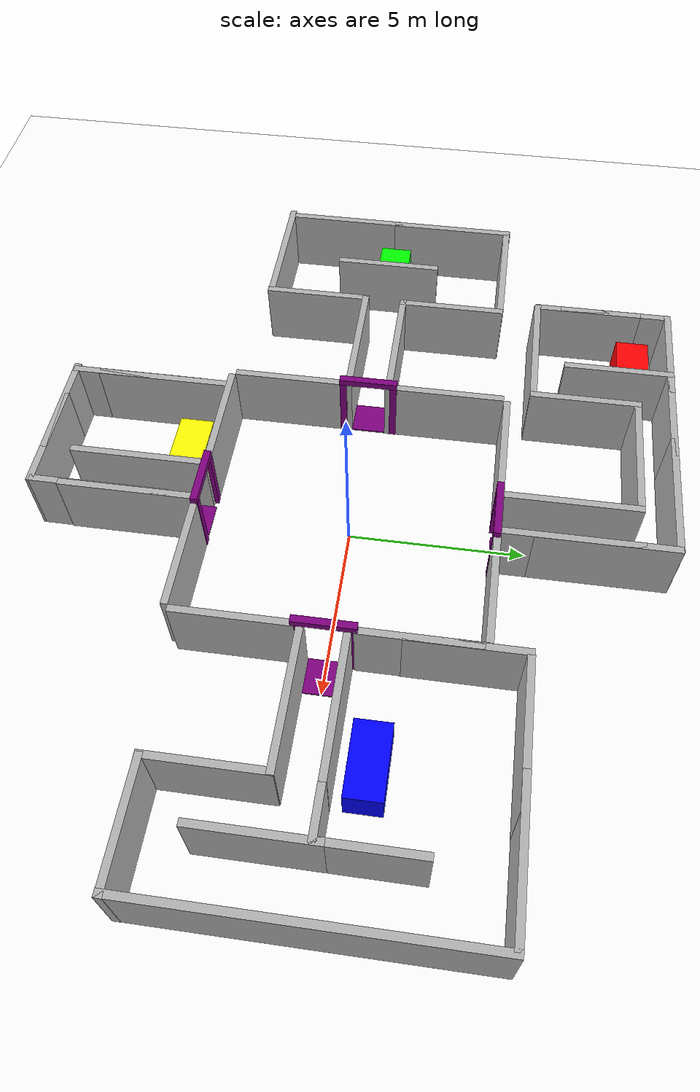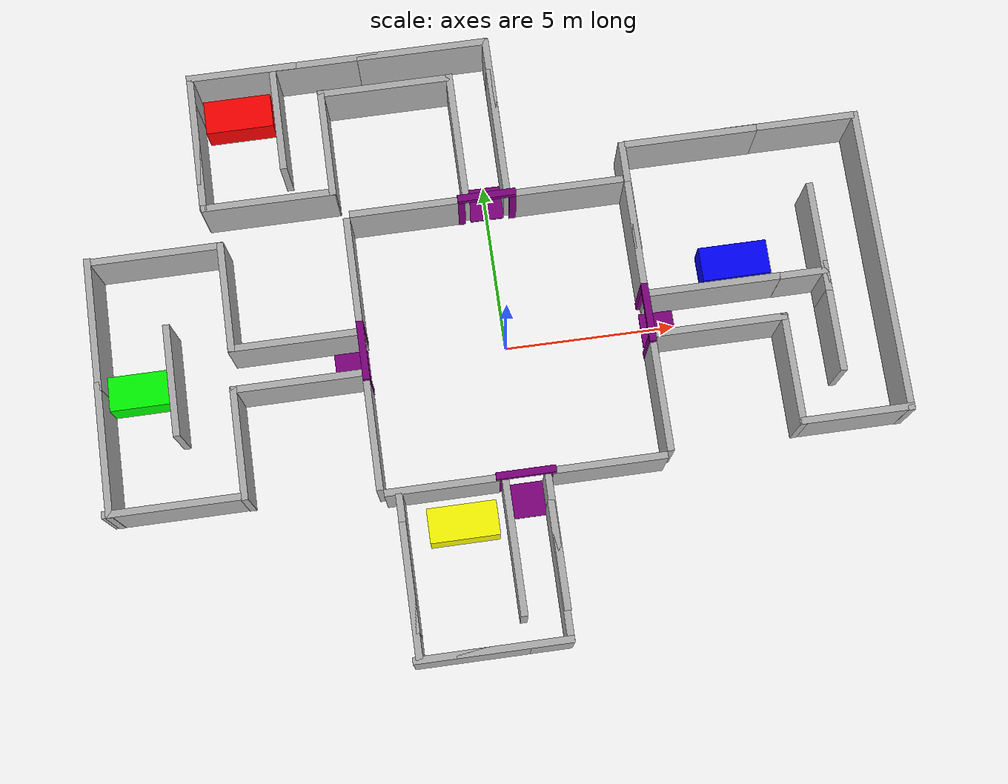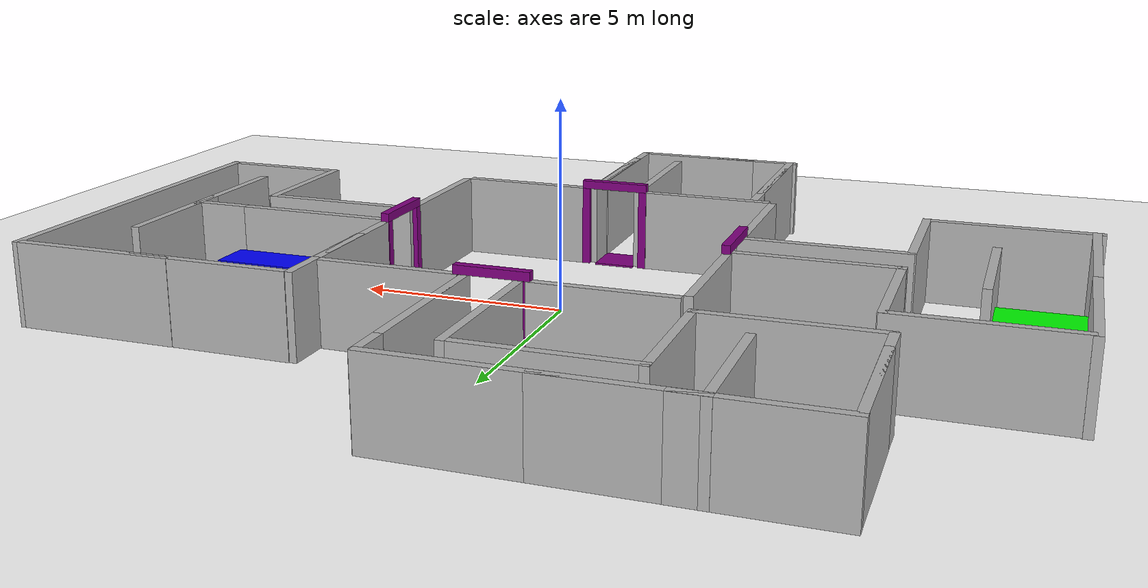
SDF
<sdf version="1.7">
 <world name="laberinto_v2_world">
  <model name="white_floor">
   <static>true</static>
   <link name="floor_link">
    <collision name="collision">
     <geometry><plane><normal>0 0 1</normal><size>40 40</size></plane></geometry>
    </collision>
    <visual name="visual">
     <geometry><plane><normal>0 0 1</normal><size>40 40</size></plane></geometry>
     <material>
      <ambient>1 1 1 1</ambient>
      <diffuse>1 1 1 1</diffuse>
      <specular>0.100000001 0.100000001 0.100000001 1</specular>
     </material>
    </visual>
    <inertial>
     <mass>1</mass>
     <inertia><ixx>1</ixx><ixy>0</ixy><ixz>0</ixz><iyy>1</iyy><iyz>0</iyz><izz>1</izz></inertia>
    </inertial>
   </link>
  </model>
  <model name="central_wall_north_left">
   <static>true</static>
   <pose>-2.375 4.0999999999999996 1 0 0 0</pose>
   <link name="link">
    <collision name="collision">
     <geometry><box><size>3.25 0.20000000000000001 2</size></box></geometry>
    </collision>
    <visual name="visual">
     <geometry><box><size>3.25 0.20000000000000001 2</size></box></geometry>
     <material>
      <ambient>0.699999988 0.699999988 0.699999988 1</ambient>
      <diffuse>0.699999988 0.699999988 0.699999988 1</diffuse>
     </material>
    </visual>
    <inertial>
     <mass>1</mass>
     <inertia><ixx>1</ixx><ixy>0</ixy><ixz>0</ixz><iyy>1</iyy><iyz>0</iyz><izz>1</izz></inertia>
    </inertial>
   </link>
  </model>
  <model name="central_wall_north_right">
   <static>true</static>
   <pose>2.375 4.0999999999999996 1 0 0 0</pose>
   <link name="link">
    <collision name="collision">
     <geometry><box><size>3.25 0.20000000000000001 2</size></box></geometry>
    </collision>
    <visual name="visual">
     <geometry><box><size>3.25 0.20000000000000001 2</size></box></geometry>
     <material>
      <ambient>0.699999988 0.699999988 0.699999988 1</ambient>
      <diffuse>0.699999988 0.699999988 0.699999988 1</diffuse>
     </material>
    </visual>
    <inertial>
     <mass>1</mass>
     <inertia><ixx>1</ixx><ixy>0</ixy><ixz>0</ixz><iyy>1</iyy><iyz>0</iyz><izz>1</izz></inertia>
    </inertial>
   </link>
  </model>
  <model name="central_wall_south_left">
   <static>true</static>
   <pose>-2.375 -4.0999999999999996 1 0 0 0</pose>
   <link name="link">
    <collision name="collision">
     <geometry><box><size>3.25 0.20000000000000001 2</size></box></geometry>
    </collision>
    <visual name="visual">
     <geometry><box><size>3.25 0.20000000000000001 2</size></box></geometry>
     <material>
      <ambient>0.699999988 0.699999988 0.699999988 1</ambient>
      <diffuse>0.699999988 0.699999988 0.699999988 1</diffuse>
     </material>
    </visual>
    <inertial>
     <mass>1</mass>
     <inertia><ixx>1</ixx><ixy>0</ixy><ixz>0</ixz><iyy>1</iyy><iyz>0</iyz><izz>1</izz></inertia>
    </inertial>
   </link>
  </model>
  <model name="central_wall_south_right">
   <static>true</static>
   <pose>2.375 -4.0999999999999996 1 0 0 0</pose>
   <link name="link">
    <collision name="collision">
     <geometry><box><size>3.25 0.20000000000000001 2</size></box></geometry>
    </collision>
    <visual name="visual">
     <geometry><box><size>3.25 0.20000000000000001 2</size></box></geometry>
     <material>
      <ambient>0.699999988 0.699999988 0.699999988 1</ambient>
      <diffuse>0.699999988 0.699999988 0.699999988 1</diffuse>
     </material>
    </visual>
    <inertial>
     <mass>1</mass>
     <inertia><ixx>1</ixx><ixy>0</ixy><ixz>0</ixz><iyy>1</iyy><iyz>0</iyz><izz>1</izz></inertia>
    </inertial>
   </link>
  </model>
  <model name="central_wall_east_bottom">
   <static>true</static>
   <pose>4.0999999999999996 -2.375 1 0 0 0</pose>
   <link name="link">
    <collision name="collision">
     <geometry><box><size>0.20000000000000001 3.25 2</size></box></geometry>
    </collision>
    <visual name="visual">
     <geometry><box><size>0.20000000000000001 3.25 2</size></box></geometry>
     <material>
      <ambient>0.699999988 0.699999988 0.699999988 1</ambient>
      <diffuse>0.699999988 0.699999988 0.699999988 1</diffuse>
     </material>
    </visual>
    <inertial>
     <mass>1</mass>
     <inertia><ixx>1</ixx><ixy>0</ixy><ixz>0</ixz><iyy>1</iyy><iyz>0</iyz><izz>1</izz></inertia>
    </inertial>
   </link>
  </model>
  <model name="central_wall_east_top">
   <static>true</static>
   <pose>4.0999999999999996 2.375 1 0 0 0</pose>
   <link name="link">
    <collision name="collision">
     <geometry><box><size>0.20000000000000001 3.25 2</size></box></geometry>
    </collision>
    <visual name="visual">
     <geometry><box><size>0.20000000000000001 3.25 2</size></box></geometry>
     <material>
      <ambient>0.699999988 0.699999988 0.699999988 1</ambient>
      <diffuse>0.699999988 0.699999988 0.699999988 1</diffuse>
     </material>
    </visual>
    <inertial>
     <mass>1</mass>
     <inertia><ixx>1</ixx><ixy>0</ixy><ixz>0</ixz><iyy>1</iyy><iyz>0</iyz><izz>1</izz></inertia>
    </inertial>
   </link>
  </model>
  <model name="central_wall_west_bottom">
   <static>true</static>
   <pose>-4.0999999999999996 -2.375 1 0 0 0</pose>
   <link name="link">
    <collision name="collision">
     <geometry><box><size>0.20000000000000001 3.25 2</size></box></geometry>
    </collision>
    <visual name="visual">
     <geometry><box><size>0.20000000000000001 3.25 2</size></box></geometry>
     <material>
      <ambient>0.699999988 0.699999988 0.699999988 1</ambient>
      <diffuse>0.699999988 0.699999988 0.699999988 1</diffuse>
     </material>
    </visual>
    <inertial>
     <mass>1</mass>
     <inertia><ixx>1</ixx><ixy>0</ixy><ixz>0</ixz><iyy>1</iyy><iyz>0</iyz><izz>1</izz></inertia>
    </inertial>
   </link>
  </model>
  <model name="central_wall_west_top">
   <static>true</static>
   <pose>-4.0999999999999996 2.375 1 0 0 0</pose>
   <link name="link">
    <collision name="collision">
     <geometry><box><size>0.20000000000000001 3.25 2</size></box></geometry>
    </collision>
    <visual name="visual">
     <geometry><box><size>0.20000000000000001 3.25 2</size></box></geometry>
     <material>
      <ambient>0.699999988 0.699999988 0.699999988 1</ambient>
      <diffuse>0.699999988 0.699999988 0.699999988 1</diffuse>
     </material>
    </visual>
    <inertial>
     <mass>1</mass>
     <inertia><ixx>1</ixx><ixy>0</ixy><ixz>0</ixz><iyy>1</iyy><iyz>0</iyz><izz>1</izz></inertia>
    </inertial>
   </link>
  </model>
  <model name="purple_carpet_north">
   <static>true</static>
   <pose>0 4.5239000000000003 -0.0097000000000000003 0 0 0</pose>
   <link name="link">
    <collision name="collision"><geometry><box><size>1 1 0.050000000000000003</size></box></geometry></collision>
    <visual name="visual">
     <geometry><box><size>1 1 0.050000000000000003</size></box></geometry>
     <material><ambient>0.5 0 0.5 1</ambient><diffuse>0.5 0 0.5 1</diffuse></material>
    </visual>
    <inertial>
     <mass>1</mass>
     <inertia><ixx>1</ixx><ixy>0</ixy><ixz>0</ixz><iyy>1</iyy><iyz>0</iyz><izz>1</izz></inertia>
    </inertial>
   </link>
  </model>
  <model name="purple_carpet_south">
   <static>true</static>
   <pose>0 -4.5239000000000003 -0.0097000000000000003 0 0 0</pose>
   <link name="link">
    <collision name="collision"><geometry><box><size>1 1 0.050000000000000003</size></box></geometry></collision>
    <visual name="visual">
     <geometry><box><size>1 1 0.050000000000000003</size></box></geometry>
     <material><ambient>0.5 0 0.5 1</ambient><diffuse>0.5 0 0.5 1</diffuse></material>
    </visual>
    <inertial>
     <mass>1</mass>
     <inertia><ixx>1</ixx><ixy>0</ixy><ixz>0</ixz><iyy>1</iyy><iyz>0</iyz><izz>1</izz></inertia>
    </inertial>
   </link>
  </model>
  <model name="purple_carpet_east">
   <static>true</static>
   <pose>4.5239000000000003 0 -0.0097000000000000003 0 0 0</pose>
   <link name="link">
    <collision name="collision"><geometry><box><size>1 1 0.050000000000000003</size></box></geometry></collision>
    <visual name="visual">
     <geometry><box><size>1 1 0.050000000000000003</size></box></geometry>
     <material><ambient>0.5 0 0.5 1</ambient><diffuse>0.5 0 0.5 1</diffuse></material>
    </visual>
    <inertial>
     <mass>1</mass>
     <inertia><ixx>1</ixx><ixy>0</ixy><ixz>0</ixz><iyy>1</iyy><iyz>0</iyz><izz>1</izz></inertia>
    </inertial>
   </link>
  </model>
  <model name="purple_carpet_west">
   <static>true</static>
   <pose>-4.5239000000000003 0 -0.0097000000000000003 0 0 0</pose>
   <link name="link">
    <collision name="collision"><geometry><box><size>1 1 0.050000000000000003</size></box></geometry></collision>
    <visual name="visual">
     <geometry><box><size>1 1 0.050000000000000003</size></box></geometry>
     <material><ambient>0.5 0 0.5 1</ambient><diffuse>0.5 0 0.5 1</diffuse></material>
    </visual>
    <inertial>
     <mass>1</mass>
     <inertia><ixx>1</ixx><ixy>0</ixy><ixz>0</ixz><iyy>1</iyy><iyz>0</iyz><izz>1</izz></inertia>
    </inertial>
   </link>
  </model>
  <model name="roman_arch_north">
   <static>true</static>
   <pose>0 4.0841000000000003 0 0 0 0</pose>
   <link name="pillar_left">
    <pose>-0.75 0 1 0 0 0</pose>
    <collision name="collision">
     <geometry><box><size>0.20000000000000001 0.20000000000000001 2</size></box></geometry>
    </collision>
    <visual name="visual">
     <geometry><box><size>0.20000000000000001 0.20000000000000001 2</size></box></geometry>
     <material><ambient>0.5 0 0.5 1</ambient><diffuse>0.5 0 0.5 1</diffuse></material>
    </visual>
    <inertial>
     <mass>1</mass>
     <inertia><ixx>1</ixx><ixy>0</ixy><ixz>0</ixz><iyy>1</iyy><iyz>0</iyz><izz>1</izz></inertia>
    </inertial>
   </link>
   <link name="pillar_right">
    <pose>0.75 0 1 0 0 0</pose>
    <collision name="collision">
     <geometry><box><size>0.20000000000000001 0.20000000000000001 2</size></box></geometry>
    </collision>
    <visual name="visual">
     <geometry><box><size>0.20000000000000001 0.20000000000000001 2</size></box></geometry>
     <material><ambient>0.5 0 0.5 1</ambient><diffuse>0.5 0 0.5 1</diffuse></material>
    </visual>
    <inertial>
     <mass>1</mass>
     <inertia><ixx>1</ixx><ixy>0</ixy><ixz>0</ixz><iyy>1</iyy><iyz>0</iyz><izz>1</izz></inertia>
    </inertial>
   </link>
   <link name="arch_top">
    <pose>0 0 2.1000000000000001 0 0 0</pose>
    <collision name="collision">
     <geometry><box><size>1.7 0.20000000000000001 0.20000000000000001</size></box></geometry>
    </collision>
    <visual name="visual">
     <geometry><box><size>1.7 0.20000000000000001 0.20000000000000001</size></box></geometry>
     <material><ambient>0.5 0 0.5 1</ambient><diffuse>0.5 0 0.5 1</diffuse></material>
    </visual>
    <inertial>
     <mass>1</mass>
     <inertia><ixx>1</ixx><ixy>0</ixy><ixz>0</ixz><iyy>1</iyy><iyz>0</iyz><izz>1</izz></inertia>
    </inertial>
   </link>
  </model>
  <model name="roman_arch_south">
   <static>true</static>
   <pose>0 -4.0841000000000003 0 0 0 0</pose>
   <link name="pillar_left">
    <pose>-0.75 0 1 0 0 0</pose>
    <collision name="collision">
     <geometry><box><size>0.20000000000000001 0.20000000000000001 2</size></box></geometry>
    </collision>
    <visual name="visual">
     <geometry><box><size>0.20000000000000001 0.20000000000000001 2</size></box></geometry>
     <material><ambient>0.5 0 0.5 1</ambient><diffuse>0.5 0 0.5 1</diffuse></material>
    </visual>
    <inertial>
     <mass>1</mass>
     <inertia><ixx>1</ixx><ixy>0</ixy><ixz>0</ixz><iyy>1</iyy><iyz>0</iyz><izz>1</izz></inertia>
    </inertial>
   </link>
   <link name="pillar_right">
    <pose>0.75 0 1 0 0 0</pose>
    <collision name="collision">
     <geometry><box><size>0.20000000000000001 0.20000000000000001 2</size></box></geometry>
    </collision>
    <visual name="visual">
     <geometry><box><size>0.20000000000000001 0.20000000000000001 2</size></box></geometry>
     <material><ambient>0.5 0 0.5 1</ambient><diffuse>0.5 0 0.5 1</diffuse></material>
    </visual>
    <inertial>
     <mass>1</mass>
     <inertia><ixx>1</ixx><ixy>0</ixy><ixz>0</ixz><iyy>1</iyy><iyz>0</iyz><izz>1</izz></inertia>
    </inertial>
   </link>
   <link name="arch_top">
    <pose>0 0 2.1000000000000001 0 0 0</pose>
    <collision name="collision">
     <geometry><box><size>1.7 0.20000000000000001 0.20000000000000001</size></box></geometry>
    </collision>
    <visual name="visual">
     <geometry><box><size>1.7 0.20000000000000001 0.20000000000000001</size></box></geometry>
     <material><ambient>0.5 0 0.5 1</ambient><diffuse>0.5 0 0.5 1</diffuse></material>
    </visual>
    <inertial>
     <mass>1</mass>
     <inertia><ixx>1</ixx><ixy>0</ixy><ixz>0</ixz><iyy>1</iyy><iyz>0</iyz><izz>1</izz></inertia>
    </inertial>
   </link>
  </model>
  <model name="roman_arch_east">
   <static>true</static>
   <pose>4.0841000000000003 -1.1102230246251565e-16 0 0 0 1.5708000000000006</pose>
   <link name="pillar_left">
    <pose>-0.75 0 1 0 0 0</pose>
    <collision name="collision">
     <geometry><box><size>0.20000000000000001 0.20000000000000001 2</size></box></geometry>
    </collision>
    <visual name="visual">
     <geometry><box><size>0.20000000000000001 0.20000000000000001 2</size></box></geometry>
     <material><ambient>0.5 0 0.5 1</ambient><diffuse>0.5 0 0.5 1</diffuse></material>
    </visual>
    <inertial>
     <mass>1</mass>
     <inertia><ixx>1</ixx><ixy>0</ixy><ixz>0</ixz><iyy>1</iyy><iyz>0</iyz><izz>1</izz></inertia>
    </inertial>
   </link>
   <link name="pillar_right">
    <pose>0.74999999999999978 0 1 0 0 0</pose>
    <collision name="collision">
     <geometry><box><size>0.20000000000000001 0.20000000000000001 2</size></box></geometry>
    </collision>
    <visual name="visual">
     <geometry><box><size>0.20000000000000001 0.20000000000000001 2</size></box></geometry>
     <material><ambient>0.5 0 0.5 1</ambient><diffuse>0.5 0 0.5 1</diffuse></material>
    </visual>
    <inertial>
     <mass>1</mass>
     <inertia><ixx>1</ixx><ixy>0</ixy><ixz>0</ixz><iyy>1</iyy><iyz>0</iyz><izz>1</izz></inertia>
    </inertial>
   </link>
   <link name="arch_top">
    <pose>0 0 2.1000000000000005 0 0 0</pose>
    <collision name="collision">
     <geometry><box><size>1.7 0.20000000000000001 0.20000000000000001</size></box></geometry>
    </collision>
    <visual name="visual">
     <geometry><box><size>1.7 0.20000000000000001 0.20000000000000001</size></box></geometry>
     <material><ambient>0.5 0 0.5 1</ambient><diffuse>0.5 0 0.5 1</diffuse></material>
    </visual>
    <inertial>
     <mass>1</mass>
     <inertia><ixx>1</ixx><ixy>0</ixy><ixz>0</ixz><iyy>1</iyy><iyz>0</iyz><izz>1</izz></inertia>
    </inertial>
   </link>
  </model>
  <model name="roman_arch_west">
   <static>true</static>
   <pose>-4.0841000000000003 -1.1102230246251565e-16 0 0 0 1.5708000000000006</pose>
   <link name="pillar_left">
    <pose>-0.75 0 1 0 0 0</pose>
    <collision name="collision">
     <geometry><box><size>0.20000000000000001 0.20000000000000001 2</size></box></geometry>
    </collision>
    <visual name="visual">
     <geometry><box><size>0.20000000000000001 0.20000000000000001 2</size></box></geometry>
     <material><ambient>0.5 0 0.5 1</ambient><diffuse>0.5 0 0.5 1</diffuse></material>
    </visual>
    <inertial>
     <mass>1</mass>
     <inertia><ixx>1</ixx><ixy>0</ixy><ixz>0</ixz><iyy>1</iyy><iyz>0</iyz><izz>1</izz></inertia>
    </inertial>
   </link>
   <link name="pillar_right">
    <pose>0.75000000000000044 0 1 0 0 0</pose>
    <collision name="collision">
     <geometry><box><size>0.20000000000000001 0.20000000000000001 2</size></box></geometry>
    </collision>
    <visual name="visual">
     <geometry><box><size>0.20000000000000001 0.20000000000000001 2</size></box></geometry>
     <material><ambient>0.5 0 0.5 1</ambient><diffuse>0.5 0 0.5 1</diffuse></material>
    </visual>
    <inertial>
     <mass>1</mass>
     <inertia><ixx>1</ixx><ixy>0</ixy><ixz>0</ixz><iyy>1</iyy><iyz>0</iyz><izz>1</izz></inertia>
    </inertial>
   </link>
   <link name="arch_top">
    <pose>0 0 2.1000000000000005 0 0 0</pose>
    <collision name="collision">
     <geometry><box><size>1.7 0.20000000000000001 0.20000000000000001</size></box></geometry>
    </collision>
    <visual name="visual">
     <geometry><box><size>1.7 0.20000000000000001 0.20000000000000001</size></box></geometry>
     <material><ambient>0.5 0 0.5 1</ambient><diffuse>0.5 0 0.5 1</diffuse></material>
    </visual>
    <inertial>
     <mass>1</mass>
     <inertia><ixx>1</ixx><ixy>0</ixy><ixz>0</ixz><iyy>1</iyy><iyz>0</iyz><izz>1</izz></inertia>
    </inertial>
   </link>
  </model>
  <model name="hall_N_seg1_wall_W">
   <static>true</static>
   <pose>-0.59999999999999998 6.0499999999999998 1 0 0 0</pose>
   <link name="link">
    <collision name="collision">
     <geometry><box><size>0.20000000000000001 3.8999999999999999 2</size></box></geometry>
    </collision>
    <visual name="visual">
     <geometry><box><size>0.20000000000000001 3.8999999999999999 2</size></box></geometry>
     <material>
      <ambient>0.699999988 0.699999988 0.699999988 1</ambient>
      <diffuse>0.699999988 0.699999988 0.699999988 1</diffuse>
     </material>
    </visual>
    <inertial>
     <mass>1</mass>
     <inertia><ixx>1</ixx><ixy>0</ixy><ixz>0</ixz><iyy>1</iyy><iyz>0</iyz><izz>1</izz></inertia>
    </inertial>
   </link>
  </model>
  <model name="hall_N_seg1_wall_E">
   <static>true</static>
   <pose>0.59999999999999998 6.0499999999999998 1 0 0 0</pose>
   <link name="link">
    <collision name="collision">
     <geometry><box><size>0.20000000000000001 3.8999999999999999 2</size></box></geometry>
    </collision>
    <visual name="visual">
     <geometry><box><size>0.20000000000000001 3.8999999999999999 2</size></box></geometry>
     <material>
      <ambient>0.699999988 0.699999988 0.699999988 1</ambient>
      <diffuse>0.699999988 0.699999988 0.699999988 1</diffuse>
     </material>
    </visual>
    <inertial>
     <mass>1</mass>
     <inertia><ixx>1</ixx><ixy>0</ixy><ixz>0</ixz><iyy>1</iyy><iyz>0</iyz><izz>1</izz></inertia>
    </inertial>
   </link>
  </model>
  <model name="hall_E_seg1_wall_S">
   <static>true</static>
   <pose>6.0499999999999998 -0.59999999999999998 1 0 0 0</pose>
   <link name="link">
    <collision name="collision">
     <geometry><box><size>3.8999999999999999 0.20000000000000001 2</size></box></geometry>
    </collision>
    <visual name="visual">
     <geometry><box><size>3.8999999999999999 0.20000000000000001 2</size></box></geometry>
     <material>
      <ambient>0.699999988 0.699999988 0.699999988 1</ambient>
      <diffuse>0.699999988 0.699999988 0.699999988 1</diffuse>
     </material>
    </visual>
    <inertial>
     <mass>1</mass>
     <inertia><ixx>1</ixx><ixy>0</ixy><ixz>0</ixz><iyy>1</iyy><iyz>0</iyz><izz>1</izz></inertia>
    </inertial>
   </link>
  </model>
  <model name="hall_E_seg1_wall_N">
   <static>true</static>
   <pose>6.0499999999999998 0.59999999999999998 1 0 0 0</pose>
   <link name="link">
    <collision name="collision">
     <geometry><box><size>3.8999999999999999 0.20000000000000001 2</size></box></geometry>
    </collision>
    <visual name="visual">
     <geometry><box><size>3.8999999999999999 0.20000000000000001 2</size></box></geometry>
     <material>
      <ambient>0.699999988 0.699999988 0.699999988 1</ambient>
      <diffuse>0.699999988 0.699999988 0.699999988 1</diffuse>
     </material>
    </visual>
    <inertial>
     <mass>1</mass>
     <inertia><ixx>1</ixx><ixy>0</ixy><ixz>0</ixz><iyy>1</iyy><iyz>0</iyz><izz>1</izz></inertia>
    </inertial>
   </link>
  </model>
  <model name="hall_E_turn_wall_E">
   <static>true</static>
   <pose>8.6907930374145508 0.59337317943572998 1 0 0 1.5708000357176291</pose>
   <link name="link">
    <collision name="collision">
     <geometry><box><size>0.20000000000000001 1.3999999999999999 2</size></box></geometry>
    </collision>
    <visual name="visual">
     <geometry><box><size>0.20000000000000001 1.3999999999999999 2</size></box></geometry>
     <material>
      <ambient>0.699999988 0.699999988 0.699999988 1</ambient>
      <diffuse>0.699999988 0.699999988 0.699999988 1</diffuse>
     </material>
    </visual>
    <inertial>
     <mass>1</mass>
     <inertia><ixx>1</ixx><ixy>0</ixy><ixz>0</ixz><iyy>1</iyy><iyz>0</iyz><izz>1</izz></inertia>
    </inertial>
   </link>
  </model>
  <model name="hall_E_seg2_wall_W">
   <static>true</static>
   <pose>11.001354217529297 0.73156499862670898 1 0 0 0</pose>
   <link name="link">
    <collision name="collision"><geometry><box><size>0.20000000000000001 9 2</size></box></geometry></collision>
    <visual name="visual">
     <geometry><box><size>0.20000000000000001 9 2</size></box></geometry>
     <material>
      <ambient>0.699999988 0.699999988 0.699999988 1</ambient>
      <diffuse>0.699999988 0.699999988 0.699999988 1</diffuse>
     </material>
    </visual>
    <inertial>
     <mass>1</mass>
     <inertia><ixx>1</ixx><ixy>0</ixy><ixz>0</ixz><iyy>1</iyy><iyz>0</iyz><izz>1</izz></inertia>
    </inertial>
   </link>
  </model>
  <model name="hall_S_seg1_wall_W">
   <static>true</static>
   <pose>-0.59999999999999998 -6.0499999999999998 1 0 0 0</pose>
   <link name="link">
    <collision name="collision">
     <geometry><box><size>0.20000000000000001 3.8999999999999999 2</size></box></geometry>
    </collision>
    <visual name="visual">
     <geometry><box><size>0.20000000000000001 3.8999999999999999 2</size></box></geometry>
     <material>
      <ambient>0.699999988 0.699999988 0.699999988 1</ambient>
      <diffuse>0.699999988 0.699999988 0.699999988 1</diffuse>
     </material>
    </visual>
    <inertial>
     <mass>1</mass>
     <inertia><ixx>1</ixx><ixy>0</ixy><ixz>0</ixz><iyy>1</iyy><iyz>0</iyz><izz>1</izz></inertia>
    </inertial>
   </link>
  </model>
  <model name="hall_S_seg1_wall_E">
   <static>true</static>
   <pose>0.59999999999999998 -6.0499999999999998 1 0 0 0</pose>
   <link name="link">
    <collision name="collision">
     <geometry><box><size>0.20000000000000001 3.8999999999999999 2</size></box></geometry>
    </collision>
    <visual name="visual">
     <geometry><box><size>0.20000000000000001 3.8999999999999999 2</size></box></geometry>
     <material>
      <ambient>0.699999988 0.699999988 0.699999988 1</ambient>
      <diffuse>0.699999988 0.699999988 0.699999988 1</diffuse>
     </material>
    </visual>
    <inertial>
     <mass>1</mass>
     <inertia><ixx>1</ixx><ixy>0</ixy><ixz>0</ixz><iyy>1</iyy><iyz>0</iyz><izz>1</izz></inertia>
    </inertial>
   </link>
  </model>
  <model name="hall_W_seg1_wall_S">
   <static>true</static>
   <pose>-5.9732098579406738 -0.60000002384185791 1 0 0 0</pose>
   <link name="link">
    <collision name="collision">
     <geometry><box><size>3.8999999999999999 0.20000000000000001 2</size></box></geometry>
    </collision>
    <visual name="visual">
     <geometry><box><size>3.8999999999999999 0.20000000000000001 2</size></box></geometry>
     <material>
      <ambient>0.699999988 0.699999988 0.699999988 1</ambient>
      <diffuse>0.699999988 0.699999988 0.699999988 1</diffuse>
     </material>
    </visual>
    <inertial>
     <mass>1</mass>
     <inertia><ixx>1</ixx><ixy>0</ixy><ixz>0</ixz><iyy>1</iyy><iyz>0</iyz><izz>1</izz></inertia>
    </inertial>
   </link>
  </model>
  <model name="hall_W_seg1_wall_N">
   <static>true</static>
   <pose>-5.9408130645751953 0.60000002384185791 1 0 0 0</pose>
   <link name="link">
    <collision name="collision">
     <geometry><box><size>3.8999999999999999 0.20000000000000001 2</size></box></geometry>
    </collision>
    <visual name="visual">
     <geometry><box><size>3.8999999999999999 0.20000000000000001 2</size></box></geometry>
     <material>
      <ambient>0.699999988 0.699999988 0.699999988 1</ambient>
      <diffuse>0.699999988 0.699999988 0.699999988 1</diffuse>
     </material>
    </visual>
    <inertial>
     <mass>1</mass>
     <inertia><ixx>1</ixx><ixy>0</ixy><ixz>0</ixz><iyy>1</iyy><iyz>0</iyz><izz>1</izz></inertia>
    </inertial>
   </link>
  </model>
  <model name="shelf_red">
   <static>true</static>
   <pose>-6.9506011009216309 8 0.5 0 0 0</pose>
   <link name="link">
    <collision name="collision"><geometry><box><size>2 1 1</size></box></geometry></collision>
    <visual name="visual">
     <geometry><box><size>2 1 1</size></box></geometry>
     <material><ambient>1 0 0 1</ambient><diffuse>1 0 0 1</diffuse></material>
    </visual>
    <inertial>
     <mass>1</mass>
     <inertia><ixx>1</ixx><ixy>0</ixy><ixz>0</ixz><iyy>1</iyy><iyz>0</iyz><izz>1</izz></inertia>
    </inertial>
   </link>
  </model>
  <model name="shelf_blue">
   <static>true</static>
   <pose>6.9586000442504883 1.5026929378509521 0.5 0 0 0</pose>
   <link name="link">
    <collision name="collision"><geometry><box><size>2 1 1</size></box></geometry></collision>
    <visual name="visual">
     <geometry><box><size>2 1 1</size></box></geometry>
     <material><ambient>0 0 1 1</ambient><diffuse>0 0 1 1</diffuse></material>
    </visual>
    <inertial>
     <mass>1</mass>
     <inertia><ixx>1</ixx><ixy>0</ixy><ixz>0</ixz><iyy>1</iyy><iyz>0</iyz><izz>1</izz></inertia>
    </inertial>
   </link>
  </model>
  <model name="shelf_green">
   <static>true</static>
   <pose>-10.612700462341309 -0.021423157304525375 0.5 0 0 0</pose>
   <link name="link">
    <collision name="collision"><geometry><box><size>2 1 1</size></box></geometry></collision>
    <visual name="visual">
     <geometry><box><size>2 1 1</size></box></geometry>
     <material><ambient>0 1 0 1</ambient><diffuse>0 1 0 1</diffuse></material>
    </visual>
    <inertial>
     <mass>1</mass>
     <inertia><ixx>1</ixx><ixy>0</ixy><ixz>0</ixz><iyy>1</iyy><iyz>0</iyz><izz>1</izz></inertia>
    </inertial>
   </link>
  </model>
  <model name="shelf_yellow">
   <static>true</static>
   <pose>-1.9134199619293213 -5.0404210090637207 0.5 0 0 0</pose>
   <link name="link">
    <collision name="collision"><geometry><box><size>2 1 1</size></box></geometry></collision>
    <visual name="visual">
     <geometry><box><size>2 1 1</size></box></geometry>
     <material><ambient>1 1 0 1</ambient><diffuse>1 1 0 1</diffuse></material>
    </visual>
    <inertial>
     <mass>1</mass>
     <inertia><ixx>1</ixx><ixy>0</ixy><ixz>0</ixz><iyy>1</iyy><iyz>0</iyz><izz>1</izz></inertia>
    </inertial>
   </link>
  </model>
  <model name="hall_N_seg1_wall_W_1">
   <static>true</static>
   <pose>0.6020188584716788 7.0129482593853911 1 0 0 0</pose>
   <link name="link">
    <collision name="collision">
     <geometry><box><size>0.20000000000000001 3.8999999999999999 2</size></box></geometry>
    </collision>
    <visual name="visual">
     <geometry><box><size>0.20000000000000001 3.8999999999999999 2</size></box></geometry>
     <material>
      <ambient>0.699999988 0.699999988 0.699999988 1</ambient>
      <diffuse>0.699999988 0.699999988 0.699999988 1</diffuse>
     </material>
    </visual>
    <inertial>
     <mass>1</mass>
     <inertia><ixx>1</ixx><ixy>0</ixy><ixz>0</ixz><iyy>1</iyy><iyz>0</iyz><izz>1</izz></inertia>
    </inertial>
   </link>
  </model>
  <model name="hall_W_seg1_wall_N_1">
   <static>true</static>
   <pose>-2.5481842863380639 7.896057469603516 1 0 0 0</pose>
   <link name="link">
    <collision name="collision">
     <geometry><box><size>3.8999999999999999 0.20000000000000001 2</size></box></geometry>
    </collision>
    <visual name="visual">
     <geometry><box><size>3.8999999999999999 0.20000000000000001 2</size></box></geometry>
     <material>
      <ambient>0.699999988 0.699999988 0.699999988 1</ambient>
      <diffuse>0.699999988 0.699999988 0.699999988 1</diffuse>
     </material>
    </visual>
    <inertial>
     <mass>1</mass>
     <inertia><ixx>1</ixx><ixy>0</ixy><ixz>0</ixz><iyy>1</iyy><iyz>0</iyz><izz>1</izz></inertia>
    </inertial>
   </link>
  </model>
  <model name="hall_W_seg1_wall_N_1_1">
   <static>true</static>
   <pose>-1.2641344650043398 8.8827948449863818 1 0 0 0</pose>
   <link name="link">
    <collision name="collision">
     <geometry><box><size>3.8999999999999999 0.20000000000000001 2</size></box></geometry>
    </collision>
    <visual name="visual">
     <geometry><box><size>3.8999999999999999 0.20000000000000001 2</size></box></geometry>
     <material>
      <ambient>0.699999988 0.699999988 0.699999988 1</ambient>
      <diffuse>0.699999988 0.699999988 0.699999988 1</diffuse>
     </material>
    </visual>
    <inertial>
     <mass>1</mass>
     <inertia><ixx>1</ixx><ixy>0</ixy><ixz>0</ixz><iyy>1</iyy><iyz>0</iyz><izz>1</izz></inertia>
    </inertial>
   </link>
  </model>
  <model name="central_wall_north_left_1">
   <static>true</static>
   <pose>-4.2075993597497492 8.8833094929227787 1 0 0 0</pose>
   <link name="link">
    <collision name="collision">
     <geometry><box><size>3.25 0.20000000000000001 2</size></box></geometry>
    </collision>
    <visual name="visual">
     <geometry><box><size>3.25 0.20000000000000001 2</size></box></geometry>
     <material>
      <ambient>0.699999988 0.699999988 0.699999988 1</ambient>
      <diffuse>0.699999988 0.699999988 0.699999988 1</diffuse>
     </material>
    </visual>
    <inertial>
     <mass>1</mass>
     <inertia><ixx>1</ixx><ixy>0</ixy><ixz>0</ixz><iyy>1</iyy><iyz>0</iyz><izz>1</izz></inertia>
    </inertial>
   </link>
  </model>
  <model name="central_wall_west_top_1">
   <static>true</static>
   <pose>-5.7290998622530642 7.3660924224057869 1 0 0 0</pose>
   <link name="link">
    <collision name="collision">
     <geometry><box><size>0.20000000000000001 3.25 2</size></box></geometry>
    </collision>
    <visual name="visual">
     <geometry><box><size>0.20000000000000001 3.25 2</size></box></geometry>
     <material>
      <ambient>0.699999988 0.699999988 0.699999988 1</ambient>
      <diffuse>0.699999988 0.699999988 0.699999988 1</diffuse>
     </material>
    </visual>
    <inertial>
     <mass>1</mass>
     <inertia><ixx>1</ixx><ixy>0</ixy><ixz>0</ixz><iyy>1</iyy><iyz>0</iyz><izz>1</izz></inertia>
    </inertial>
   </link>
  </model>
  <model name="central_wall_west_top_2">
   <static>true</static>
   <pose>-4.4022162640528535 6.3829205294805034 1 0 0 0</pose>
   <link name="link">
    <collision name="collision">
     <geometry><box><size>0.20000000000000001 3.25 2</size></box></geometry>
    </collision>
    <visual name="visual">
     <geometry><box><size>0.20000000000000001 3.25 2</size></box></geometry>
     <material>
      <ambient>0.699999988 0.699999988 0.699999988 1</ambient>
      <diffuse>0.699999988 0.699999988 0.699999988 1</diffuse>
     </material>
    </visual>
    <inertial>
     <mass>1</mass>
     <inertia><ixx>1</ixx><ixy>0</ixy><ixz>0</ixz><iyy>1</iyy><iyz>0</iyz><izz>1</izz></inertia>
    </inertial>
   </link>
  </model>
  <model name="hall_W_seg1_wall_N_1_1_1">
   <static>true</static>
   <pose>-6.2818586713664857 4.8493817619810509 1 0 0 0</pose>
   <link name="link">
    <collision name="collision">
     <geometry><box><size>3.8999999999999999 0.20000000000000001 2</size></box></geometry>
    </collision>
    <visual name="visual">
     <geometry><box><size>3.8999999999999999 0.20000000000000001 2</size></box></geometry>
     <material>
      <ambient>0.699999988 0.699999988 0.699999988 1</ambient>
      <diffuse>0.699999988 0.699999988 0.699999988 1</diffuse>
     </material>
    </visual>
    <inertial>
     <mass>1</mass>
     <inertia><ixx>1</ixx><ixy>0</ixy><ixz>0</ixz><iyy>1</iyy><iyz>0</iyz><izz>1</izz></inertia>
    </inertial>
   </link>
  </model>
  <model name="central_wall_west_top_1_1">
   <static>true</static>
   <pose>-8.1620850943761774 6.4278701514251608 1 0 0 0</pose>
   <link name="link">
    <collision name="collision">
     <geometry><box><size>0.20000000000000001 3.25 2</size></box></geometry>
    </collision>
    <visual name="visual">
     <geometry><box><size>0.20000000000000001 3.25 2</size></box></geometry>
     <material>
      <ambient>0.699999988 0.699999988 0.699999988 1</ambient>
      <diffuse>0.699999988 0.699999988 0.699999988 1</diffuse>
     </material>
    </visual>
    <inertial>
     <mass>1</mass>
     <inertia><ixx>1</ixx><ixy>0</ixy><ixz>0</ixz><iyy>1</iyy><iyz>0</iyz><izz>1</izz></inertia>
    </inertial>
   </link>
  </model>
  <model name="central_wall_west_top_1_2">
   <static>true</static>
   <pose>-8.1646095387497049 7.2057673342368034 1 0 0 0</pose>
   <link name="link">
    <collision name="collision">
     <geometry><box><size>0.20000000000000001 3.25 2</size></box></geometry>
    </collision>
    <visual name="visual">
     <geometry><box><size>0.20000000000000001 3.25 2</size></box></geometry>
     <material>
      <ambient>0.699999988 0.699999988 0.699999988 1</ambient>
      <diffuse>0.699999988 0.699999988 0.699999988 1</diffuse>
     </material>
    </visual>
    <inertial>
     <mass>1</mass>
     <inertia><ixx>1</ixx><ixy>0</ixy><ixz>0</ixz><iyy>1</iyy><iyz>0</iyz><izz>1</izz></inertia>
    </inertial>
   </link>
  </model>
  <model name="central_wall_north_left_1_1">
   <static>true</static>
   <pose>-6.6424949274072684 8.8883125482772698 1 0 0 0</pose>
   <link name="link">
    <collision name="collision">
     <geometry><box><size>3.25 0.20000000000000001 2</size></box></geometry>
    </collision>
    <visual name="visual">
     <geometry><box><size>3.25 0.20000000000000001 2</size></box></geometry>
     <material>
      <ambient>0.699999988 0.699999988 0.699999988 1</ambient>
      <diffuse>0.699999988 0.699999988 0.699999988 1</diffuse>
     </material>
    </visual>
    <inertial>
     <mass>1</mass>
     <inertia><ixx>1</ixx><ixy>0</ixy><ixz>0</ixz><iyy>1</iyy><iyz>0</iyz><izz>1</izz></inertia>
    </inertial>
   </link>
  </model>
  <model name="central_wall_east_top_1">
   <static>true</static>
   <pose>7.9177112070279767 -2.1404923250035424 1 0 0 0</pose>
   <link name="link">
    <collision name="collision">
     <geometry><box><size>0.20000000000000001 3.25 2</size></box></geometry>
    </collision>
    <visual name="visual">
     <geometry><box><size>0.20000000000000001 3.25 2</size></box></geometry>
     <material>
      <ambient>0.699999988 0.699999988 0.699999988 1</ambient>
      <diffuse>0.699999988 0.699999988 0.699999988 1</diffuse>
     </material>
    </visual>
    <inertial>
     <mass>1</mass>
     <inertia><ixx>1</ixx><ixy>0</ixy><ixz>0</ixz><iyy>1</iyy><iyz>0</iyz><izz>1</izz></inertia>
    </inertial>
   </link>
  </model>
  <model name="central_wall_north_left_1_1_1">
   <static>true</static>
   <pose>9.4800510008157701 -3.6605672170680279 1 0 0 0</pose>
   <link name="link">
    <collision name="collision">
     <geometry><box><size>3.25 0.20000000000000001 2</size></box></geometry>
    </collision>
    <visual name="visual">
     <geometry><box><size>3.25 0.20000000000000001 2</size></box></geometry>
     <material>
      <ambient>0.699999988 0.699999988 0.699999988 1</ambient>
      <diffuse>0.699999988 0.699999988 0.699999988 1</diffuse>
     </material>
    </visual>
    <inertial>
     <mass>1</mass>
     <inertia><ixx>1</ixx><ixy>0</ixy><ixz>0</ixz><iyy>1</iyy><iyz>0</iyz><izz>1</izz></inertia>
    </inertial>
   </link>
  </model>
  <model name="central_wall_east_top_1_1">
   <static>true</static>
   <pose>9.3151881671612635 -0.75702062011142124 1 0 0 0</pose>
   <link name="link">
    <collision name="collision">
     <geometry><box><size>0.20000000000000001 3.25 2</size></box></geometry>
    </collision>
    <visual name="visual">
     <geometry><box><size>0.20000000000000001 3.25 2</size></box></geometry>
     <material>
      <ambient>0.699999988 0.699999988 0.699999988 1</ambient>
      <diffuse>0.699999988 0.699999988 0.699999988 1</diffuse>
     </material>
    </visual>
    <inertial>
     <mass>1</mass>
     <inertia><ixx>1</ixx><ixy>0</ixy><ixz>0</ixz><iyy>1</iyy><iyz>0</iyz><izz>1</izz></inertia>
    </inertial>
   </link>
  </model>
  <model name="central_wall_east_top_1_2">
   <static>true</static>
   <pose>9.3150252138917118 1.6094280605389633 1 0 0 0</pose>
   <link name="link">
    <collision name="collision">
     <geometry><box><size>0.20000000000000001 3.25 2</size></box></geometry>
    </collision>
    <visual name="visual">
     <geometry><box><size>0.20000000000000001 3.25 2</size></box></geometry>
     <material>
      <ambient>0.699999988 0.699999988 0.699999988 1</ambient>
      <diffuse>0.699999988 0.699999988 0.699999988 1</diffuse>
     </material>
    </visual>
    <inertial>
     <mass>1</mass>
     <inertia><ixx>1</ixx><ixy>0</ixy><ixz>0</ixz><iyy>1</iyy><iyz>0</iyz><izz>1</izz></inertia>
    </inertial>
   </link>
  </model>
  <model name="hall_E_seg1_wall_N_1">
   <static>true</static>
   <pose>9.0244226224818025 5.1348417743053849 1 0 0 0</pose>
   <link name="link">
    <collision name="collision">
     <geometry><box><size>3.8999999999999999 0.20000000000000001 2</size></box></geometry>
    </collision>
    <visual name="visual">
     <geometry><box><size>3.8999999999999999 0.20000000000000001 2</size></box></geometry>
     <material>
      <ambient>0.699999988 0.699999988 0.699999988 1</ambient>
      <diffuse>0.699999988 0.699999988 0.699999988 1</diffuse>
     </material>
    </visual>
    <inertial>
     <mass>1</mass>
     <inertia><ixx>1</ixx><ixy>0</ixy><ixz>0</ixz><iyy>1</iyy><iyz>0</iyz><izz>1</izz></inertia>
    </inertial>
   </link>
  </model>
  <model name="hall_E_seg1_wall_N_2">
   <static>true</static>
   <pose>6.1392416038456075 5.1276843302025137 1 0 0 0</pose>
   <link name="link">
    <collision name="collision">
     <geometry><box><size>3.8999999999999999 0.20000000000000001 2</size></box></geometry>
    </collision>
    <visual name="visual">
     <geometry><box><size>3.8999999999999999 0.20000000000000001 2</size></box></geometry>
     <material>
      <ambient>0.699999988 0.699999988 0.699999988 1</ambient>
      <diffuse>0.699999988 0.699999988 0.699999988 1</diffuse>
     </material>
    </visual>
    <inertial>
     <mass>1</mass>
     <inertia><ixx>1</ixx><ixy>0</ixy><ixz>0</ixz><iyy>1</iyy><iyz>0</iyz><izz>1</izz></inertia>
    </inertial>
   </link>
  </model>
  <model name="central_wall_east_top_1_2_1">
   <static>true</static>
   <pose>4.1131097809498165 3.5852710145125752 1 0 0 0</pose>
   <link name="link">
    <collision name="collision">
     <geometry><box><size>0.20000000000000001 3.25 2</size></box></geometry>
    </collision>
    <visual name="visual">
     <geometry><box><size>0.20000000000000001 3.25 2</size></box></geometry>
     <material>
      <ambient>0.699999988 0.699999988 0.699999988 1</ambient>
      <diffuse>0.699999988 0.699999988 0.699999988 1</diffuse>
     </material>
    </visual>
    <inertial>
     <mass>1</mass>
     <inertia><ixx>1</ixx><ixy>0</ixy><ixz>0</ixz><iyy>1</iyy><iyz>0</iyz><izz>1</izz></inertia>
    </inertial>
   </link>
  </model>
  <model name="central_wall_south_right_1">
   <static>true</static>
   <pose>-0.95295530210635371 -8.7851310916466279 1 0 0 0</pose>
   <link name="link">
    <collision name="collision">
     <geometry><box><size>3.25 0.20000000000000001 2</size></box></geometry>
    </collision>
    <visual name="visual">
     <geometry><box><size>3.25 0.20000000000000001 2</size></box></geometry>
     <material>
      <ambient>0.699999988 0.699999988 0.699999988 1</ambient>
      <diffuse>0.699999988 0.699999988 0.699999988 1</diffuse>
     </material>
    </visual>
    <inertial>
     <mass>1</mass>
     <inertia><ixx>1</ixx><ixy>0</ixy><ixz>0</ixz><iyy>1</iyy><iyz>0</iyz><izz>1</izz></inertia>
    </inertial>
   </link>
  </model>
  <model name="hall_S_seg1_wall_E_1">
   <static>true</static>
   <pose>0.57429390519215939 -6.864617888552397 1 0 0 0</pose>
   <link name="link">
    <collision name="collision">
     <geometry><box><size>0.20000000000000001 3.8999999999999999 2</size></box></geometry>
    </collision>
    <visual name="visual">
     <geometry><box><size>0.20000000000000001 3.8999999999999999 2</size></box></geometry>
     <material>
      <ambient>0.699999988 0.699999988 0.699999988 1</ambient>
      <diffuse>0.699999988 0.699999988 0.699999988 1</diffuse>
     </material>
    </visual>
    <inertial>
     <mass>1</mass>
     <inertia><ixx>1</ixx><ixy>0</ixy><ixz>0</ixz><iyy>1</iyy><iyz>0</iyz><izz>1</izz></inertia>
    </inertial>
   </link>
  </model>
  <model name="hall_S_seg1_wall_E_2">
   <static>true</static>
   <pose>-3.5925804091582969 -6.1142837618145247 1 0 0 0</pose>
   <link name="link">
    <collision name="collision">
     <geometry><box><size>0.20000000000000001 3.8999999999999999 2</size></box></geometry>
    </collision>
    <visual name="visual">
     <geometry><box><size>0.20000000000000001 3.8999999999999999 2</size></box></geometry>
     <material>
      <ambient>0.699999988 0.699999988 0.699999988 1</ambient>
      <diffuse>0.699999988 0.699999988 0.699999988 1</diffuse>
     </material>
    </visual>
    <inertial>
     <mass>1</mass>
     <inertia><ixx>1</ixx><ixy>0</ixy><ixz>0</ixz><iyy>1</iyy><iyz>0</iyz><izz>1</izz></inertia>
    </inertial>
   </link>
  </model>
  <model name="central_wall_south_right_1_1">
   <static>true</static>
   <pose>-2.1638184280638431 -8.7856978904271497 1 0 0 0</pose>
   <link name="link">
    <collision name="collision">
     <geometry><box><size>3.25 0.20000000000000001 2</size></box></geometry>
    </collision>
    <visual name="visual">
     <geometry><box><size>3.25 0.20000000000000001 2</size></box></geometry>
     <material>
      <ambient>0.699999988 0.699999988 0.699999988 1</ambient>
      <diffuse>0.699999988 0.699999988 0.699999988 1</diffuse>
     </material>
    </visual>
    <inertial>
     <mass>1</mass>
     <inertia><ixx>1</ixx><ixy>0</ixy><ixz>0</ixz><iyy>1</iyy><iyz>0</iyz><izz>1</izz></inertia>
    </inertial>
   </link>
  </model>
  <model name="hall_S_seg1_wall_E_2_1">
   <static>true</static>
   <pose>-3.5987828436969926 -6.9124801997682237 1 0 0 0</pose>
   <link name="link">
    <collision name="collision">
     <geometry><box><size>0.20000000000000001 3.8999999999999999 2</size></box></geometry>
    </collision>
    <visual name="visual">
     <geometry><box><size>0.20000000000000001 3.8999999999999999 2</size></box></geometry>
     <material>
      <ambient>0.699999988 0.699999988 0.699999988 1</ambient>
      <diffuse>0.699999988 0.699999988 0.699999988 1</diffuse>
     </material>
    </visual>
    <inertial>
     <mass>1</mass>
     <inertia><ixx>1</ixx><ixy>0</ixy><ixz>0</ixz><iyy>1</iyy><iyz>0</iyz><izz>1</izz></inertia>
    </inertial>
   </link>
  </model>
  <model name="central_wall_west_top_1_3">
   <static>true</static>
   <pose>-9.5582944844029143 -0.081506289680354893 1 0 0 0</pose>
   <link name="link">
    <collision name="collision">
     <geometry><box><size>0.20000000000000001 3.25 2</size></box></geometry>
    </collision>
    <visual name="visual">
     <geometry><box><size>0.20000000000000001 3.25 2</size></box></geometry>
     <material>
      <ambient>0.699999988 0.699999988 0.699999988 1</ambient>
      <diffuse>0.699999988 0.699999988 0.699999988 1</diffuse>
     </material>
    </visual>
    <inertial>
     <mass>1</mass>
     <inertia><ixx>1</ixx><ixy>0</ixy><ixz>0</ixz><iyy>1</iyy><iyz>0</iyz><izz>1</izz></inertia>
    </inertial>
   </link>
  </model>
  <model name="central_wall_west_bottom_1">
   <static>true</static>
   <pose>-7.8534441284956271 -2.1387565967038795 1 0 0 0</pose>
   <link name="link">
    <collision name="collision">
     <geometry><box><size>0.20000000000000001 3.25 2</size></box></geometry>
    </collision>
    <visual name="visual">
     <geometry><box><size>0.20000000000000001 3.25 2</size></box></geometry>
     <material>
      <ambient>0.699999988 0.699999988 0.699999988 1</ambient>
      <diffuse>0.699999988 0.699999988 0.699999988 1</diffuse>
     </material>
    </visual>
    <inertial>
     <mass>1</mass>
     <inertia><ixx>1</ixx><ixy>0</ixy><ixz>0</ixz><iyy>1</iyy><iyz>0</iyz><izz>1</izz></inertia>
    </inertial>
   </link>
  </model>
  <model name="central_wall_west_bottom_2">
   <static>true</static>
   <pose>-7.7884818974045409 2.1351765279666584 1 0 0 0</pose>
   <link name="link">
    <collision name="collision">
     <geometry><box><size>0.20000000000000001 3.25 2</size></box></geometry>
    </collision>
    <visual name="visual">
     <geometry><box><size>0.20000000000000001 3.25 2</size></box></geometry>
     <material>
      <ambient>0.699999988 0.699999988 0.699999988 1</ambient>
      <diffuse>0.699999988 0.699999988 0.699999988 1</diffuse>
     </material>
    </visual>
    <inertial>
     <mass>1</mass>
     <inertia><ixx>1</ixx><ixy>0</ixy><ixz>0</ixz><iyy>1</iyy><iyz>0</iyz><izz>1</izz></inertia>
    </inertial>
   </link>
  </model>
  <model name="hall_W_seg1_wall_N_1_1_1_1">
   <static>true</static>
   <pose>-9.6560504607133417 3.6749902217621941 1 0 0 0</pose>
   <link name="link">
    <collision name="collision">
     <geometry><box><size>3.8999999999999999 0.20000000000000001 2</size></box></geometry>
    </collision>
    <visual name="visual">
     <geometry><box><size>3.8999999999999999 0.20000000000000001 2</size></box></geometry>
     <material>
      <ambient>0.699999988 0.699999988 0.699999988 1</ambient>
      <diffuse>0.699999988 0.699999988 0.699999988 1</diffuse>
     </material>
    </visual>
    <inertial>
     <mass>1</mass>
     <inertia><ixx>1</ixx><ixy>0</ixy><ixz>0</ixz><iyy>1</iyy><iyz>0</iyz><izz>1</izz></inertia>
    </inertial>
   </link>
  </model>
  <model name="hall_W_seg1_wall_N_1_1_1_2">
   <static>true</static>
   <pose>-9.8864405981541079 -3.6491759108024038 1 0 0 0</pose>
   <link name="link">
    <collision name="collision">
     <geometry><box><size>3.8999999999999999 0.20000000000000001 2</size></box></geometry>
    </collision>
    <visual name="visual">
     <geometry><box><size>3.8999999999999999 0.20000000000000001 2</size></box></geometry>
     <material>
      <ambient>0.699999988 0.699999988 0.699999988 1</ambient>
      <diffuse>0.699999988 0.699999988 0.699999988 1</diffuse>
     </material>
    </visual>
    <inertial>
     <mass>1</mass>
     <inertia><ixx>1</ixx><ixy>0</ixy><ixz>0</ixz><iyy>1</iyy><iyz>0</iyz><izz>1</izz></inertia>
    </inertial>
   </link>
  </model>
  <model name="hall_N_seg1_wall_W_2">
   <static>true</static>
   <pose>-11.622352557004369 1.8503831417910448 1 0 0 0</pose>
   <link name="link">
    <collision name="collision">
     <geometry><box><size>0.20000000000000001 3.8999999999999999 2</size></box></geometry>
    </collision>
    <visual name="visual">
     <geometry><box><size>0.20000000000000001 3.8999999999999999 2</size></box></geometry>
     <material>
      <ambient>0.699999988 0.699999988 0.699999988 1</ambient>
      <diffuse>0.699999988 0.699999988 0.699999988 1</diffuse>
     </material>
    </visual>
    <inertial>
     <mass>1</mass>
     <inertia><ixx>1</ixx><ixy>0</ixy><ixz>0</ixz><iyy>1</iyy><iyz>0</iyz><izz>1</izz></inertia>
    </inertial>
   </link>
  </model>
  <model name="hall_N_seg1_wall_W_3">
   <static>true</static>
   <pose>-11.631788397783776 -1.8084829935621958 1 0 0 0</pose>
   <link name="link">
    <collision name="collision">
     <geometry><box><size>0.20000000000000001 3.8999999999999999 2</size></box></geometry>
    </collision>
    <visual name="visual">
     <geometry><box><size>0.20000000000000001 3.8999999999999999 2</size></box></geometry>
     <material>
      <ambient>0.699999988 0.699999988 0.699999988 1</ambient>
      <diffuse>0.699999988 0.699999988 0.699999988 1</diffuse>
     </material>
    </visual>
    <inertial>
     <mass>1</mass>
     <inertia><ixx>1</ixx><ixy>0</ixy><ixz>0</ixz><iyy>1</iyy><iyz>0</iyz><izz>1</izz></inertia>
    </inertial>
   </link>
  </model>
 </world>
</sdf>
